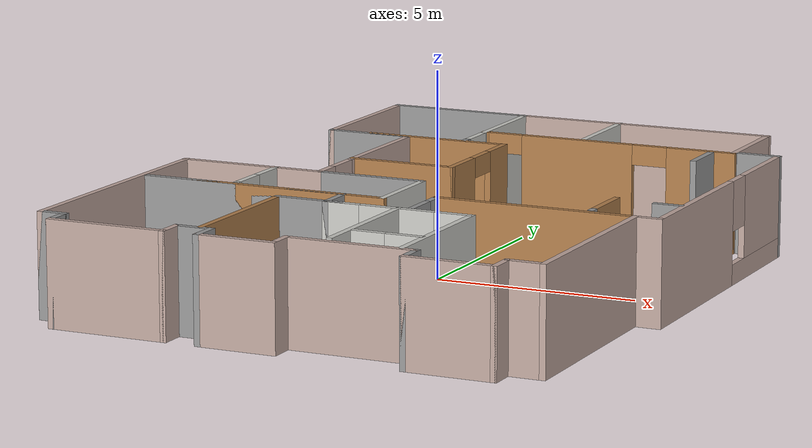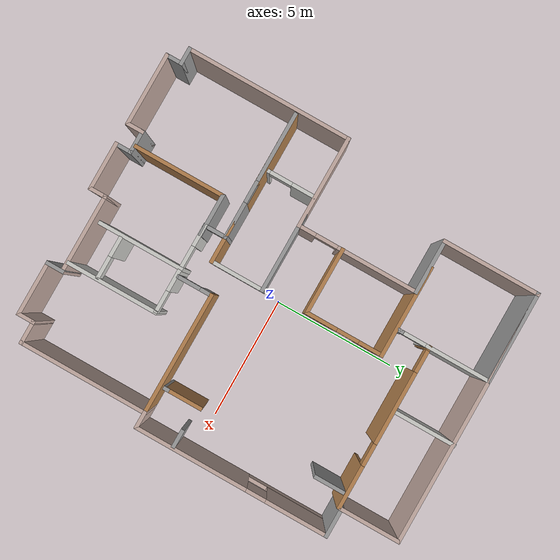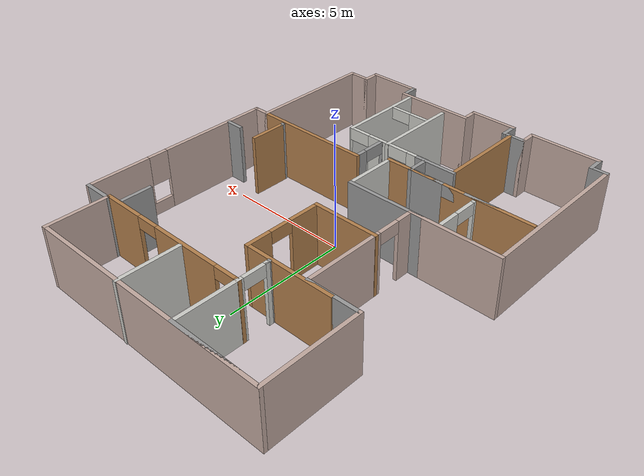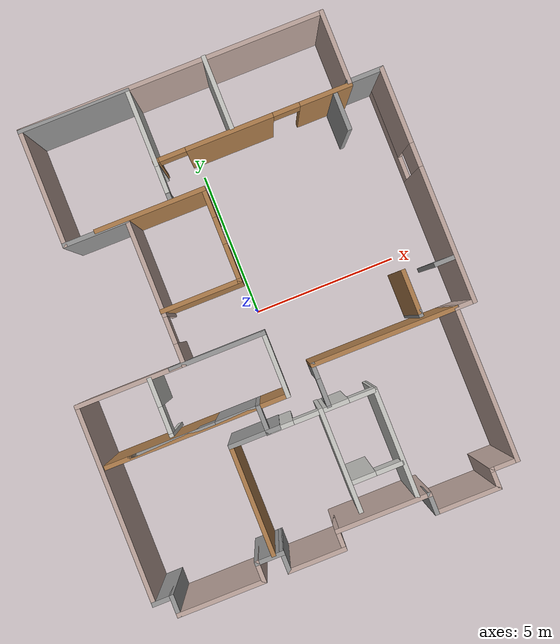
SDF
<?xml version='1.0'?>
<sdf version='1.6'>
  <model name='wall_v1'>
    <pose frame=''>0.046477 0.046613 0 0 -0 0</pose>
    <link name='Wall_1'>
      <collision name='Wall_1_Collision'>
        <geometry>
          <box>
            <size>4 0.15 2.5</size>
          </box>
        </geometry>
        <pose frame=''>0 0 1.25 0 -0 0</pose>
      </collision>
      <visual name='Wall_1_Visual'>
        <pose frame=''>0 0 1.25 0 -0 0</pose>
        <geometry>
          <box>
            <size>4 0.15 2.5</size>
          </box>
        </geometry>
        <material>
          <script>
            <uri>file://media/materials/scripts/gazebo.material</uri>
            <name>Gazebo/Grey</name>
          </script>
          <ambient>0.760784 0.662745 0.627451 1</ambient>
        </material>
        <meta>
          <layer>0</layer>
        </meta>
      </visual>
      <pose frame=''>-4.9 6.0117 0 0 0 -1.5708</pose>
    </link>
    <link name='Wall_10'>
      <collision name='Wall_10_Collision'>
        <geometry>
          <box>
            <size>1 0.15 2.5</size>
          </box>
        </geometry>
        <pose frame=''>0 0 1.25 0 -0 0</pose>
      </collision>
      <visual name='Wall_10_Visual'>
        <pose frame=''>0 0 1.25 0 -0 0</pose>
        <geometry>
          <box>
            <size>1 0.15 2.5</size>
          </box>
        </geometry>
        <material>
          <script>
            <uri>file://media/materials/scripts/gazebo.material</uri>
            <name>Gazebo/Grey</name>
          </script>
          <ambient>1 1 1 1</ambient>
        </material>
        <meta>
          <layer>0</layer>
        </meta>
      </visual>
      <pose frame=''>-2.525 -7.3633 0 0 -0 0</pose>
    </link>
    <link name='Wall_11'>
      <collision name='Wall_11_Collision'>
        <geometry>
          <box>
            <size>0.75 0.15 2.5</size>
          </box>
        </geometry>
        <pose frame=''>0 0 1.25 0 -0 0</pose>
      </collision>
      <visual name='Wall_11_Visual'>
        <pose frame=''>0 0 1.25 0 -0 0</pose>
        <geometry>
          <box>
            <size>0.75 0.15 2.5</size>
          </box>
        </geometry>
        <material>
          <script>
            <uri>file://media/materials/scripts/gazebo.material</uri>
            <name>Gazebo/Grey</name>
          </script>
          <ambient>1 1 1 1</ambient>
        </material>
        <meta>
          <layer>0</layer>
        </meta>
      </visual>
      <pose frame=''>-2.1 -7.6633 0 0 0 -1.5708</pose>
    </link>
    <link name='Wall_12'>
      <collision name='Wall_12_Collision'>
        <geometry>
          <box>
            <size>2 0.15 2.5</size>
          </box>
        </geometry>
        <pose frame=''>0 0 1.25 0 -0 0</pose>
      </collision>
      <visual name='Wall_12_Visual'>
        <pose frame=''>0 0 1.25 0 -0 0</pose>
        <geometry>
          <box>
            <size>2 0.15 2.5</size>
          </box>
        </geometry>
        <material>
          <script>
            <uri>file://media/materials/scripts/gazebo.material</uri>
            <name>Gazebo/Grey</name>
          </script>
          <ambient>0.760784 0.662745 0.627451 1</ambient>
        </material>
        <meta>
          <layer>0</layer>
        </meta>
      </visual>
      <pose frame=''>-1.175 -7.9633 0 0 -0 0</pose>
    </link>
    <link name='Wall_13'>
      <collision name='Wall_13_Collision'>
        <geometry>
          <box>
            <size>0.75 0.15 2.5</size>
          </box>
        </geometry>
        <pose frame=''>0 0 1.25 0 -0 0</pose>
      </collision>
      <visual name='Wall_13_Visual'>
        <pose frame=''>0 0 1.25 0 -0 0</pose>
        <geometry>
          <box>
            <size>0.75 0.15 2.5</size>
          </box>
        </geometry>
        <material>
          <script>
            <uri>file://media/materials/scripts/gazebo.material</uri>
            <name>Gazebo/Grey</name>
          </script>
          <ambient>0.760784 0.662745 0.627451 1</ambient>
        </material>
        <meta>
          <layer>0</layer>
        </meta>
      </visual>
      <pose frame=''>-0.25 -7.6633 0 0 -0 1.5708</pose>
    </link>
    <link name='Wall_14'>
      <collision name='Wall_14_Collision'>
        <geometry>
          <box>
            <size>3.25 0.15 2.5</size>
          </box>
        </geometry>
        <pose frame=''>0 0 1.25 0 -0 0</pose>
      </collision>
      <visual name='Wall_14_Visual'>
        <pose frame=''>0 0 1.25 0 -0 0</pose>
        <geometry>
          <box>
            <size>3.25 0.15 2.5</size>
          </box>
        </geometry>
        <material>
          <script>
            <uri>file://media/materials/scripts/gazebo.material</uri>
            <name>Gazebo/Grey</name>
          </script>
          <ambient>0.760784 0.662745 0.627451 1</ambient>
        </material>
        <meta>
          <layer>0</layer>
        </meta>
      </visual>
      <pose frame=''>1.3 -7.3633 0 0 -0 0</pose>
    </link>
    <link name='Wall_15'>
      <collision name='Wall_15_Collision'>
        <geometry>
          <box>
            <size>0.75 0.15 2.5</size>
          </box>
        </geometry>
        <pose frame=''>0 0 1.25 0 -0 0</pose>
      </collision>
      <visual name='Wall_15_Visual'>
        <pose frame=''>0 0 1.25 0 -0 0</pose>
        <geometry>
          <box>
            <size>0.75 0.15 2.5</size>
          </box>
        </geometry>
        <material>
          <script>
            <uri>file://media/materials/scripts/gazebo.material</uri>
            <name>Gazebo/Grey</name>
          </script>
          <ambient>1 1 1 1</ambient>
        </material>
        <meta>
          <layer>0</layer>
        </meta>
      </visual>
      <pose frame=''>2.85 -7.6633 0 0 0 -1.5708</pose>
    </link>
    <link name='Wall_16'>
      <collision name='Wall_16_Collision'>
        <geometry>
          <box>
            <size>2.25 0.15 2.5</size>
          </box>
        </geometry>
        <pose frame=''>0 0 1.25 0 -0 0</pose>
      </collision>
      <visual name='Wall_16_Visual'>
        <pose frame=''>0 0 1.25 0 -0 0</pose>
        <geometry>
          <box>
            <size>2.25 0.15 2.5</size>
          </box>
        </geometry>
        <material>
          <script>
            <uri>file://media/materials/scripts/gazebo.material</uri>
            <name>Gazebo/Grey</name>
          </script>
          <ambient>0.760784 0.662745 0.627451 1</ambient>
        </material>
        <meta>
          <layer>0</layer>
        </meta>
      </visual>
      <pose frame=''>3.9 -7.9633 0 0 -0 0</pose>
    </link>
    <link name='Wall_17'>
      <collision name='Wall_17_Collision'>
        <geometry>
          <box>
            <size>0.75 0.15 2.5</size>
          </box>
        </geometry>
        <pose frame=''>0 0 1.25 0 -0 0</pose>
      </collision>
      <visual name='Wall_17_Visual'>
        <pose frame=''>0 0 1.25 0 -0 0</pose>
        <geometry>
          <box>
            <size>0.75 0.15 2.5</size>
          </box>
        </geometry>
        <material>
          <script>
            <uri>file://media/materials/scripts/gazebo.material</uri>
            <name>Gazebo/Grey</name>
          </script>
          <ambient>0.760784 0.662745 0.627451 1</ambient>
        </material>
        <meta>
          <layer>0</layer>
        </meta>
      </visual>
      <pose frame=''>4.95 -7.6633 0 0 -0 1.5708</pose>
    </link>
    <link name='Wall_18'>
      <collision name='Wall_18_Collision'>
        <geometry>
          <box>
            <size>1 0.15 2.5</size>
          </box>
        </geometry>
        <pose frame=''>0 0 1.25 0 -0 0</pose>
      </collision>
      <visual name='Wall_18_Visual'>
        <pose frame=''>0 0 1.25 0 -0 0</pose>
        <geometry>
          <box>
            <size>1 0.15 2.5</size>
          </box>
        </geometry>
        <material>
          <script>
            <uri>file://media/materials/scripts/gazebo.material</uri>
            <name>Gazebo/Grey</name>
          </script>
          <ambient>0.760784 0.662745 0.627451 1</ambient>
        </material>
        <meta>
          <layer>0</layer>
        </meta>
      </visual>
      <pose frame=''>5.375 -7.3633 0 0 -0 0</pose>
    </link>
    <link name='Wall_19'>
      <collision name='Wall_19_Collision'>
        <geometry>
          <box>
            <size>5.25 0.15 2.5</size>
          </box>
        </geometry>
        <pose frame=''>0 0 1.25 0 -0 0</pose>
      </collision>
      <visual name='Wall_19_Visual'>
        <pose frame=''>0 0 1.25 0 -0 0</pose>
        <geometry>
          <box>
            <size>5.25 0.15 2.5</size>
          </box>
        </geometry>
        <material>
          <script>
            <uri>file://media/materials/scripts/gazebo.material</uri>
            <name>Gazebo/Grey</name>
          </script>
          <ambient>0.760784 0.662745 0.627451 1</ambient>
        </material>
        <meta>
          <layer>0</layer>
        </meta>
      </visual>
      <pose frame=''>5.8 -4.8133 0 0 -0 1.5708</pose>
    </link>
    <link name='Wall_2'>
      <collision name='Wall_2_Collision'>
        <geometry>
          <box>
            <size>2.25 0.15 2.5</size>
          </box>
        </geometry>
        <pose frame=''>0 0 1.25 0 -0 0</pose>
      </collision>
      <visual name='Wall_2_Visual'>
        <pose frame=''>0 0 1.25 0 -0 0</pose>
        <geometry>
          <box>
            <size>2.25 0.15 2.5</size>
          </box>
        </geometry>
        <material>
          <script>
            <uri>file://media/materials/scripts/gazebo.material</uri>
            <name>Gazebo/Grey</name>
          </script>
          <ambient>1 1 1 1</ambient>
        </material>
        <meta>
          <layer>0</layer>
        </meta>
      </visual>
      <pose frame=''>-3.85 4.0867 0 0 -0 0</pose>
    </link>
    <link name='Wall_20'>
      <collision name='Wall_20_Collision'>
        <geometry>
          <box>
            <size>0.75 0.15 2.5</size>
          </box>
        </geometry>
        <pose frame=''>0 0 1.25 0 -0 0</pose>
      </collision>
      <visual name='Wall_20_Visual'>
        <pose frame=''>0 0 1.25 0 -0 0</pose>
        <geometry>
          <box>
            <size>0.75 0.15 2.5</size>
          </box>
        </geometry>
        <material>
          <script>
            <uri>file://media/materials/scripts/gazebo.material</uri>
            <name>Gazebo/Grey</name>
          </script>
          <ambient>0.760784 0.662745 0.627451 1</ambient>
        </material>
        <meta>
          <layer>0</layer>
        </meta>
      </visual>
      <pose frame=''>6.1 -2.2633 0 0 -0 0</pose>
    </link>
    <link name='Wall_21'>
      <pose frame=''>6.4 1.6617 0 0 -0 1.5708</pose>
      <visual name='Wall_21_Visual_0'>
        <pose frame=''>-1.69592 0 1.25 0 -0 0</pose>
        <geometry>
          <box>
            <size>4.60816 0.15 2.5</size>
          </box>
        </geometry>
        <material>
          <script>
            <uri>file://media/materials/scripts/gazebo.material</uri>
            <name>Gazebo/Grey</name>
          </script>
          <ambient>0.760784 0.662745 0.627451 1</ambient>
        </material>
        <meta>
          <layer>0</layer>
        </meta>
      </visual>
      <collision name='Wall_21_Collision_0'>
        <geometry>
          <box>
            <size>4.60816 0.15 2.5</size>
          </box>
        </geometry>
        <pose frame=''>-1.69592 0 1.25 0 -0 0</pose>
      </collision>
      <visual name='Wall_21_Visual_1'>
        <pose frame=''>2.30408 0 0.25 0 -0 0</pose>
        <geometry>
          <box>
            <size>3.39184 0.15 0.5</size>
          </box>
        </geometry>
        <material>
          <script>
            <uri>file://media/materials/scripts/gazebo.material</uri>
            <name>Gazebo/Grey</name>
          </script>
          <ambient>0.760784 0.662745 0.627451 1</ambient>
        </material>
        <meta>
          <layer>0</layer>
        </meta>
      </visual>
      <collision name='Wall_21_Collision_1'>
        <geometry>
          <box>
            <size>3.39184 0.15 0.5</size>
          </box>
        </geometry>
        <pose frame=''>2.30408 0 0.25 0 -0 0</pose>
      </collision>
      <visual name='Wall_21_Visual_2'>
        <pose frame=''>2.70408 0 1.5 0 -0 0</pose>
        <geometry>
          <box>
            <size>2.59184 0.15 2</size>
          </box>
        </geometry>
        <material>
          <script>
            <uri>file://media/materials/scripts/gazebo.material</uri>
            <name>Gazebo/Grey</name>
          </script>
          <ambient>0.760784 0.662745 0.627451 1</ambient>
        </material>
        <meta>
          <layer>0</layer>
        </meta>
      </visual>
      <collision name='Wall_21_Collision_2'>
        <geometry>
          <box>
            <size>2.59184 0.15 2</size>
          </box>
        </geometry>
        <pose frame=''>2.70408 0 1.5 0 -0 0</pose>
      </collision>
      <visual name='Wall_21_Visual_3'>
        <pose frame=''>1.00816 0 1.9 0 -0 0</pose>
        <geometry>
          <box>
            <size>0.8 0.15 1.2</size>
          </box>
        </geometry>
        <material>
          <script>
            <uri>file://media/materials/scripts/gazebo.material</uri>
            <name>Gazebo/Grey</name>
          </script>
          <ambient>0.760784 0.662745 0.627451 1</ambient>
        </material>
        <meta>
          <layer>0</layer>
        </meta>
      </visual>
      <collision name='Wall_21_Collision_3'>
        <geometry>
          <box>
            <size>0.8 0.15 1.2</size>
          </box>
        </geometry>
        <pose frame=''>1.00816 0 1.9 0 -0 0</pose>
      </collision>
    </link>
    <link name='Wall_22'>
      <collision name='Wall_22_Collision'>
        <geometry>
          <box>
            <size>1.25 0.15 2.5</size>
          </box>
        </geometry>
        <pose frame=''>0 0 1.25 0 -0 0</pose>
      </collision>
      <visual name='Wall_22_Visual'>
        <pose frame=''>0 0 1.25 0 -0 0</pose>
        <geometry>
          <box>
            <size>1.25 0.15 2.5</size>
          </box>
        </geometry>
        <material>
          <script>
            <uri>file://media/materials/scripts/gazebo.material</uri>
            <name>Gazebo/Grey</name>
          </script>
          <ambient>1 1 1 1</ambient>
        </material>
        <meta>
          <layer>0</layer>
        </meta>
      </visual>
      <pose frame=''>5.85 5.5867 0 0 -0 3.14159</pose>
    </link>
    <link name='Wall_23'>
      <collision name='Wall_23_Collision'>
        <geometry>
          <box>
            <size>2.5 0.15 2.5</size>
          </box>
        </geometry>
        <pose frame=''>0 0 1.25 0 -0 0</pose>
      </collision>
      <visual name='Wall_23_Visual'>
        <pose frame=''>0 0 1.25 0 -0 0</pose>
        <geometry>
          <box>
            <size>2.5 0.15 2.5</size>
          </box>
        </geometry>
        <material>
          <script>
            <uri>file://media/materials/scripts/gazebo.material</uri>
            <name>Gazebo/Grey</name>
          </script>
          <ambient>0.760784 0.662745 0.627451 1</ambient>
        </material>
        <meta>
          <layer>0</layer>
        </meta>
      </visual>
      <pose frame=''>5.3 6.7617 0 0 -0 1.5708</pose>
    </link>
    <link name='Wall_24'>
      <collision name='Wall_24_Collision'>
        <geometry>
          <box>
            <size>10.35 0.15 2.5</size>
          </box>
        </geometry>
        <pose frame=''>0 0 1.25 0 -0 0</pose>
      </collision>
      <visual name='Wall_24_Visual'>
        <pose frame=''>0 0 1.25 0 -0 0</pose>
        <geometry>
          <box>
            <size>10.35 0.15 2.5</size>
          </box>
        </geometry>
        <material>
          <script>
            <uri>file://media/materials/scripts/gazebo.material</uri>
            <name>Gazebo/Grey</name>
          </script>
          <ambient>0.760784 0.662745 0.627451 1</ambient>
        </material>
        <meta>
          <layer>0</layer>
        </meta>
      </visual>
      <pose frame=''>0.2 7.9367 0 0 -0 3.14159</pose>
    </link>
    <link name='Wall_25'>
      <collision name='Wall_25_Collision'>
        <geometry>
          <box>
            <size>3.75 0.15 2.5</size>
          </box>
        </geometry>
        <pose frame=''>0 0 1.25 0 -0 0</pose>
      </collision>
      <visual name='Wall_25_Visual'>
        <pose frame=''>0 0 1.25 0 -0 0</pose>
        <geometry>
          <box>
            <size>3.75 0.15 2.5</size>
          </box>
        </geometry>
        <material>
          <script>
            <uri>file://media/materials/scripts/gazebo.material</uri>
            <name>Gazebo/Grey</name>
          </script>
          <ambient>1 1 1 1</ambient>
        </material>
        <meta>
          <layer>0</layer>
        </meta>
      </visual>
      <pose frame=''>-3.1 7.9367 0 0 -0 0</pose>
    </link>
    <link name='Wall_26'>
      <pose frame=''>-1.3 6.1367 0 0 0 -1.5708</pose>
      <visual name='Wall_26_Visual_0'>
        <pose frame=''>-0.532989 0 1.25 0 -0 0</pose>
        <geometry>
          <box>
            <size>2.68402 0.15 2.5</size>
          </box>
        </geometry>
        <material>
          <script>
            <uri>file://media/materials/scripts/gazebo.material</uri>
            <name>Gazebo/CeilingTiled</name>
          </script>
          <ambient>1 1 1 1</ambient>
        </material>
        <meta>
          <layer>0</layer>
        </meta>
      </visual>
      <collision name='Wall_26_Collision_0'>
        <geometry>
          <box>
            <size>2.68402 0.15 2.5</size>
          </box>
        </geometry>
        <pose frame=''>-0.532989 0 1.25 0 -0 0</pose>
      </collision>
      <visual name='Wall_26_Visual_1'>
        <pose frame=''>1.79201 0 1.25 0 -0 0</pose>
        <geometry>
          <box>
            <size>0.165977 0.15 2.5</size>
          </box>
        </geometry>
        <material>
          <script>
            <uri>file://media/materials/scripts/gazebo.material</uri>
            <name>Gazebo/CeilingTiled</name>
          </script>
          <ambient>1 1 1 1</ambient>
        </material>
        <meta>
          <layer>0</layer>
        </meta>
      </visual>
      <collision name='Wall_26_Collision_1'>
        <geometry>
          <box>
            <size>0.165977 0.15 2.5</size>
          </box>
        </geometry>
        <pose frame=''>1.79201 0 1.25 0 -0 0</pose>
      </collision>
      <visual name='Wall_26_Visual_2'>
        <pose frame=''>1.25902 0 2.25 0 -0 0</pose>
        <geometry>
          <box>
            <size>0.9 0.15 0.5</size>
          </box>
        </geometry>
        <material>
          <script>
            <uri>file://media/materials/scripts/gazebo.material</uri>
            <name>Gazebo/CeilingTiled</name>
          </script>
          <ambient>1 1 1 1</ambient>
        </material>
        <meta>
          <layer>0</layer>
        </meta>
      </visual>
      <collision name='Wall_26_Collision_2'>
        <geometry>
          <box>
            <size>0.9 0.15 0.5</size>
          </box>
        </geometry>
        <pose frame=''>1.25902 0 2.25 0 -0 0</pose>
      </collision>
    </link>
    <link name='Wall_27'>
      <collision name='Wall_27_Collision'>
        <geometry>
          <box>
            <size>0.25 0.15 2.5</size>
          </box>
        </geometry>
        <pose frame=''>0 0 1.25 0 -0 0</pose>
      </collision>
      <visual name='Wall_27_Visual'>
        <pose frame=''>0 0 1.25 0 -0 0</pose>
        <geometry>
          <box>
            <size>0.25 0.15 2.5</size>
          </box>
        </geometry>
        <material>
          <script>
            <uri>file://media/materials/scripts/gazebo.material</uri>
            <name>Gazebo/Grey</name>
          </script>
          <ambient>1 1 1 1</ambient>
        </material>
        <meta>
          <layer>0</layer>
        </meta>
      </visual>
      <pose frame=''>-1.3 4.2867 0 0 0 -1.5708</pose>
    </link>
    <link name='Wall_3'>
      <pose frame=''>-2.8 1.6617 0 0 0 -1.5708</pose>
      <visual name='Wall_3_Visual_0'>
        <pose frame=''>-0.835272 0 1.25 0 -0 0</pose>
        <geometry>
          <box>
            <size>3.32946 0.15 2.5</size>
          </box>
        </geometry>
        <material>
          <script>
            <uri>file://media/materials/scripts/gazebo.material</uri>
            <name>Gazebo/Grey</name>
          </script>
          <ambient>0.760784 0.662745 0.627451 1</ambient>
        </material>
        <meta>
          <layer>0</layer>
        </meta>
      </visual>
      <collision name='Wall_3_Collision_0'>
        <geometry>
          <box>
            <size>3.32946 0.15 2.5</size>
          </box>
        </geometry>
        <pose frame=''>-0.835272 0 1.25 0 -0 0</pose>
      </collision>
      <visual name='Wall_3_Visual_1'>
        <pose frame=''>2.11473 0 1.25 0 -0 0</pose>
        <geometry>
          <box>
            <size>0.770544 0.15 2.5</size>
          </box>
        </geometry>
        <material>
          <script>
            <uri>file://media/materials/scripts/gazebo.material</uri>
            <name>Gazebo/Grey</name>
          </script>
          <ambient>0.760784 0.662745 0.627451 1</ambient>
        </material>
        <meta>
          <layer>0</layer>
        </meta>
      </visual>
      <collision name='Wall_3_Collision_1'>
        <geometry>
          <box>
            <size>0.770544 0.15 2.5</size>
          </box>
        </geometry>
        <pose frame=''>2.11473 0 1.25 0 -0 0</pose>
      </collision>
      <visual name='Wall_3_Visual_2'>
        <pose frame=''>1.27946 0 2.25 0 -0 0</pose>
        <geometry>
          <box>
            <size>0.9 0.15 0.5</size>
          </box>
        </geometry>
        <material>
          <script>
            <uri>file://media/materials/scripts/gazebo.material</uri>
            <name>Gazebo/Grey</name>
          </script>
          <ambient>0.760784 0.662745 0.627451 1</ambient>
        </material>
        <meta>
          <layer>0</layer>
        </meta>
      </visual>
      <collision name='Wall_3_Collision_2'>
        <geometry>
          <box>
            <size>0.9 0.15 0.5</size>
          </box>
        </geometry>
        <pose frame=''>1.27946 0 2.25 0 -0 0</pose>
      </collision>
    </link>
    <link name='Wall_30'>
      <collision name='Wall_30_Collision'>
        <geometry>
          <box>
            <size>3.75 0.15 2.5</size>
          </box>
        </geometry>
        <pose frame=''>0 0 1.25 0 -0 0</pose>
      </collision>
      <visual name='Wall_30_Visual'>
        <pose frame=''>0 0 1.25 0 -0 0</pose>
        <geometry>
          <box>
            <size>3.75 0.15 2.5</size>
          </box>
        </geometry>
        <material>
          <script>
            <uri>file://media/materials/scripts/gazebo.material</uri>
            <name>Gazebo/Wood</name>
          </script>
          <ambient>1 1 1 1</ambient>
        </material>
        <meta>
          <layer>0</layer>
        </meta>
      </visual>
      <pose frame=''>-2.00939 4.13287 0 0 -0 0</pose>
    </link>
    <link name='Wall_31'>
      <pose frame=''>-0.209392 2.58287 0 0 0 -1.5708</pose>
      <visual name='Wall_31_Visual_0'>
        <pose frame=''>-1.1076 0 1.25 0 -0 0</pose>
        <geometry>
          <box>
            <size>1.03481 0.15 2.5</size>
          </box>
        </geometry>
        <material>
          <script>
            <uri>file://media/materials/scripts/gazebo.material</uri>
            <name>Gazebo/Wood</name>
          </script>
          <ambient>1 1 1 1</ambient>
        </material>
        <meta>
          <layer>0</layer>
        </meta>
      </visual>
      <collision name='Wall_31_Collision_0'>
        <geometry>
          <box>
            <size>1.03481 0.15 2.5</size>
          </box>
        </geometry>
        <pose frame=''>-1.1076 0 1.25 0 -0 0</pose>
      </collision>
      <visual name='Wall_31_Visual_1'>
        <pose frame=''>0.967405 0 1.25 0 -0 0</pose>
        <geometry>
          <box>
            <size>1.31519 0.15 2.5</size>
          </box>
        </geometry>
        <material>
          <script>
            <uri>file://media/materials/scripts/gazebo.material</uri>
            <name>Gazebo/Wood</name>
          </script>
          <ambient>1 1 1 1</ambient>
        </material>
        <meta>
          <layer>0</layer>
        </meta>
      </visual>
      <collision name='Wall_31_Collision_1'>
        <geometry>
          <box>
            <size>1.31519 0.15 2.5</size>
          </box>
        </geometry>
        <pose frame=''>0.967405 0 1.25 0 -0 0</pose>
      </collision>
      <visual name='Wall_31_Visual_2'>
        <pose frame=''>-0.140189 0 2.25 0 -0 0</pose>
        <geometry>
          <box>
            <size>0.9 0.15 0.5</size>
          </box>
        </geometry>
        <material>
          <script>
            <uri>file://media/materials/scripts/gazebo.material</uri>
            <name>Gazebo/Wood</name>
          </script>
          <ambient>1 1 1 1</ambient>
        </material>
        <meta>
          <layer>0</layer>
        </meta>
      </visual>
      <collision name='Wall_31_Collision_2'>
        <geometry>
          <box>
            <size>0.9 0.15 0.5</size>
          </box>
        </geometry>
        <pose frame=''>-0.140189 0 2.25 0 -0 0</pose>
      </collision>
    </link>
    <link name='Wall_32'>
      <collision name='Wall_32_Collision'>
        <geometry>
          <box>
            <size>2.75 0.15 2.5</size>
          </box>
        </geometry>
        <pose frame=''>0 0 1.25 0 -0 0</pose>
      </collision>
      <visual name='Wall_32_Visual'>
        <pose frame=''>0 0 1.25 0 -0 0</pose>
        <geometry>
          <box>
            <size>2.75 0.15 2.5</size>
          </box>
        </geometry>
        <material>
          <script>
            <uri>file://media/materials/scripts/gazebo.material</uri>
            <name>Gazebo/Wood</name>
          </script>
          <ambient>1 1 1 1</ambient>
        </material>
        <meta>
          <layer>0</layer>
        </meta>
      </visual>
      <pose frame=''>-1.50939 1.03287 0 0 -0 3.14159</pose>
    </link>
    <link name='Wall_34'>
      <collision name='Wall_34_Collision'>
        <geometry>
          <box>
            <size>3.25 0.15 2.5</size>
          </box>
        </geometry>
        <pose frame=''>0 0 1.25 0 -0 0</pose>
      </collision>
      <visual name='Wall_34_Visual'>
        <pose frame=''>0 0 1.25 0 -0 0</pose>
        <geometry>
          <box>
            <size>3.25 0.15 2.5</size>
          </box>
        </geometry>
        <material>
          <script>
            <uri>file://media/materials/scripts/gazebo.material</uri>
            <name>Gazebo/Grey</name>
          </script>
          <ambient>1 1 1 1</ambient>
        </material>
        <meta>
          <layer>0</layer>
        </meta>
      </visual>
      <pose frame=''>-1.67419 -0.761565 0 0 -0 0</pose>
    </link>
    <link name='Wall_35'>
      <collision name='Wall_35_Collision'>
        <geometry>
          <box>
            <size>2.25 0.15 2.5</size>
          </box>
        </geometry>
        <pose frame=''>0 0 1.25 0 -0 0</pose>
      </collision>
      <visual name='Wall_35_Visual'>
        <pose frame=''>0 0 1.25 0 -0 0</pose>
        <geometry>
          <box>
            <size>2.25 0.15 2.5</size>
          </box>
        </geometry>
        <material>
          <script>
            <uri>file://media/materials/scripts/gazebo.material</uri>
            <name>Gazebo/CeilingTiled</name>
          </script>
          <ambient>1 1 1 1</ambient>
        </material>
        <meta>
          <layer>0</layer>
        </meta>
      </visual>
      <pose frame=''>-0.124188 -1.81157 0 0 0 -1.5708</pose>
    </link>
    <link name='Wall_36'>
      <collision name='Wall_36_Collision'>
        <geometry>
          <box>
            <size>6.25 0.15 2.5</size>
          </box>
        </geometry>
        <pose frame=''>0 0 1.25 0 -0 0</pose>
      </collision>
      <visual name='Wall_36_Visual'>
        <pose frame=''>0 0 1.25 0 -0 0</pose>
        <geometry>
          <box>
            <size>6.25 0.15 2.5</size>
          </box>
        </geometry>
        <material>
          <script>
            <uri>file://media/materials/scripts/gazebo.material</uri>
            <name>Gazebo/Wood</name>
          </script>
          <ambient>1 1 1 1</ambient>
        </material>
        <meta>
          <layer>0</layer>
        </meta>
      </visual>
      <pose frame=''>-3.17419 -2.86157 0 0 -0 3.14159</pose>
    </link>
    <link name='Wall_37'>
      <pose frame=''>-3.67419 -2.86157 0 0 -0 0</pose>
      <visual name='Wall_37_Visual_0'>
        <pose frame=''>-1.2061 0 1.25 0 -0 0</pose>
        <geometry>
          <box>
            <size>2.8378 0.15 2.5</size>
          </box>
        </geometry>
        <material>
          <script>
            <uri>file://media/materials/scripts/gazebo.material</uri>
            <name>Gazebo/Grey</name>
          </script>
          <ambient>1 1 1 1</ambient>
        </material>
        <meta>
          <layer>0</layer>
        </meta>
      </visual>
      <collision name='Wall_37_Collision_0'>
        <geometry>
          <box>
            <size>2.8378 0.15 2.5</size>
          </box>
        </geometry>
        <pose frame=''>-1.2061 0 1.25 0 -0 0</pose>
      </collision>
      <visual name='Wall_37_Visual_1'>
        <pose frame=''>1.8689 0 1.25 0 -0 0</pose>
        <geometry>
          <box>
            <size>1.5122 0.15 2.5</size>
          </box>
        </geometry>
        <material>
          <script>
            <uri>file://media/materials/scripts/gazebo.material</uri>
            <name>Gazebo/Grey</name>
          </script>
          <ambient>1 1 1 1</ambient>
        </material>
        <meta>
          <layer>0</layer>
        </meta>
      </visual>
      <collision name='Wall_37_Collision_1'>
        <geometry>
          <box>
            <size>1.5122 0.15 2.5</size>
          </box>
        </geometry>
        <pose frame=''>1.8689 0 1.25 0 -0 0</pose>
      </collision>
      <visual name='Wall_37_Visual_2'>
        <pose frame=''>0.662802 0 2.25 0 -0 0</pose>
        <geometry>
          <box>
            <size>0.9 0.15 0.5</size>
          </box>
        </geometry>
        <material>
          <script>
            <uri>file://media/materials/scripts/gazebo.material</uri>
            <name>Gazebo/Grey</name>
          </script>
          <ambient>1 1 1 1</ambient>
        </material>
        <meta>
          <layer>0</layer>
        </meta>
      </visual>
      <collision name='Wall_37_Collision_2'>
        <geometry>
          <box>
            <size>0.9 0.15 0.5</size>
          </box>
        </geometry>
        <pose frame=''>0.662802 0 2.25 0 -0 0</pose>
      </collision>
    </link>
    <link name='Wall_38'>
      <pose frame=''>-1.12419 -3.28656 0 0 0 -1.5708</pose>
      <visual name='Wall_38_Visual_0'>
        <pose frame=''>-0.487291 0 1.25 0 -0 0</pose>
        <geometry>
          <box>
            <size>0.025419 0.15 2.5</size>
          </box>
        </geometry>
        <material>
          <script>
            <uri>file://media/materials/scripts/gazebo.material</uri>
            <name>Gazebo/Grey</name>
          </script>
          <ambient>1 1 1 1</ambient>
        </material>
        <meta>
          <layer>0</layer>
        </meta>
      </visual>
      <collision name='Wall_38_Collision_0'>
        <geometry>
          <box>
            <size>0.025419 0.15 2.5</size>
          </box>
        </geometry>
        <pose frame=''>-0.487291 0 1.25 0 -0 0</pose>
      </collision>
      <visual name='Wall_38_Visual_1'>
        <pose frame=''>0.462709 0 1.25 0 -0 0</pose>
        <geometry>
          <box>
            <size>0.074581 0.15 2.5</size>
          </box>
        </geometry>
        <material>
          <script>
            <uri>file://media/materials/scripts/gazebo.material</uri>
            <name>Gazebo/Grey</name>
          </script>
          <ambient>1 1 1 1</ambient>
        </material>
        <meta>
          <layer>0</layer>
        </meta>
      </visual>
      <collision name='Wall_38_Collision_1'>
        <geometry>
          <box>
            <size>0.074581 0.15 2.5</size>
          </box>
        </geometry>
        <pose frame=''>0.462709 0 1.25 0 -0 0</pose>
      </collision>
      <visual name='Wall_38_Visual_2'>
        <pose frame=''>-0.024581 0 2.25 0 -0 0</pose>
        <geometry>
          <box>
            <size>0.9 0.15 0.5</size>
          </box>
        </geometry>
        <material>
          <script>
            <uri>file://media/materials/scripts/gazebo.material</uri>
            <name>Gazebo/Grey</name>
          </script>
          <ambient>1 1 1 1</ambient>
        </material>
        <meta>
          <layer>0</layer>
        </meta>
      </visual>
      <collision name='Wall_38_Collision_2'>
        <geometry>
          <box>
            <size>0.9 0.15 0.5</size>
          </box>
        </geometry>
        <pose frame=''>-0.024581 0 2.25 0 -0 0</pose>
      </collision>
    </link>
    <link name='Wall_39'>
      <pose frame=''>0.675812 -3.71156 0 0 -0 0</pose>
      <visual name='Wall_39_Visual_0'>
        <pose frame=''>-1.41009 0 1.25 0 -0 0</pose>
        <geometry>
          <box>
            <size>0.929825 0.15 2.5</size>
          </box>
        </geometry>
        <material>
          <script>
            <uri>file://media/materials/scripts/gazebo.material</uri>
            <name>Gazebo/CeilingTiled</name>
          </script>
          <ambient>1 1 1 1</ambient>
        </material>
        <meta>
          <layer>0</layer>
        </meta>
      </visual>
      <collision name='Wall_39_Collision_0'>
        <geometry>
          <box>
            <size>0.929825 0.15 2.5</size>
          </box>
        </geometry>
        <pose frame=''>-1.41009 0 1.25 0 -0 0</pose>
      </collision>
      <visual name='Wall_39_Visual_1'>
        <pose frame=''>0.435832 0 1.25 0 -0 0</pose>
        <geometry>
          <box>
            <size>0.962014 0.15 2.5</size>
          </box>
        </geometry>
        <material>
          <script>
            <uri>file://media/materials/scripts/gazebo.material</uri>
            <name>Gazebo/CeilingTiled</name>
          </script>
          <ambient>1 1 1 1</ambient>
        </material>
        <meta>
          <layer>0</layer>
        </meta>
      </visual>
      <collision name='Wall_39_Collision_1'>
        <geometry>
          <box>
            <size>0.962014 0.15 2.5</size>
          </box>
        </geometry>
        <pose frame=''>0.435832 0 1.25 0 -0 0</pose>
      </collision>
      <visual name='Wall_39_Visual_2'>
        <pose frame=''>1.84592 0 1.25 0 -0 0</pose>
        <geometry>
          <box>
            <size>0.058161 0.15 2.5</size>
          </box>
        </geometry>
        <material>
          <script>
            <uri>file://media/materials/scripts/gazebo.material</uri>
            <name>Gazebo/CeilingTiled</name>
          </script>
          <ambient>1 1 1 1</ambient>
        </material>
        <meta>
          <layer>0</layer>
        </meta>
      </visual>
      <collision name='Wall_39_Collision_2'>
        <geometry>
          <box>
            <size>0.058161 0.15 2.5</size>
          </box>
        </geometry>
        <pose frame=''>1.84592 0 1.25 0 -0 0</pose>
      </collision>
      <visual name='Wall_39_Visual_3'>
        <pose frame=''>-0.495175 0 2.25 0 -0 0</pose>
        <geometry>
          <box>
            <size>0.9 0.15 0.5</size>
          </box>
        </geometry>
        <material>
          <script>
            <uri>file://media/materials/scripts/gazebo.material</uri>
            <name>Gazebo/CeilingTiled</name>
          </script>
          <ambient>1 1 1 1</ambient>
        </material>
        <meta>
          <layer>0</layer>
        </meta>
      </visual>
      <collision name='Wall_39_Collision_3'>
        <geometry>
          <box>
            <size>0.9 0.15 0.5</size>
          </box>
        </geometry>
        <pose frame=''>-0.495175 0 2.25 0 -0 0</pose>
      </collision>
      <visual name='Wall_39_Visual_4'>
        <pose frame=''>1.36684 0 2.25 0 -0 0</pose>
        <geometry>
          <box>
            <size>0.9 0.15 0.5</size>
          </box>
        </geometry>
        <material>
          <script>
            <uri>file://media/materials/scripts/gazebo.material</uri>
            <name>Gazebo/CeilingTiled</name>
          </script>
          <ambient>1 1 1 1</ambient>
        </material>
        <meta>
          <layer>0</layer>
        </meta>
      </visual>
      <collision name='Wall_39_Collision_4'>
        <geometry>
          <box>
            <size>0.9 0.15 0.5</size>
          </box>
        </geometry>
        <pose frame=''>1.36684 0 2.25 0 -0 0</pose>
      </collision>
    </link>
    <link name='Wall_4'>
      <collision name='Wall_4_Collision'>
        <geometry>
          <box>
            <size>3.75 0.15 2.5</size>
          </box>
        </geometry>
        <pose frame=''>0 0 1.25 0 -0 0</pose>
      </collision>
      <visual name='Wall_4_Visual'>
        <pose frame=''>0 0 1.25 0 -0 0</pose>
        <geometry>
          <box>
            <size>3.75 0.15 2.5</size>
          </box>
        </geometry>
        <material>
          <script>
            <uri>file://media/materials/scripts/gazebo.material</uri>
            <name>Gazebo/Grey</name>
          </script>
          <ambient>0.760784 0.662745 0.627451 1</ambient>
        </material>
        <meta>
          <layer>0</layer>
        </meta>
      </visual>
      <pose frame=''>-4.6 -0.7633 0 0 -0 3.14159</pose>
    </link>
    <link name='Wall_40'>
      <collision name='Wall_40_Collision'>
        <geometry>
          <box>
            <size>3.75 0.15 2.5</size>
          </box>
        </geometry>
        <pose frame=''>0 0 1.25 0 -0 0</pose>
      </collision>
      <visual name='Wall_40_Visual'>
        <pose frame=''>0 0 1.25 0 -0 0</pose>
        <geometry>
          <box>
            <size>3.75 0.15 2.5</size>
          </box>
        </geometry>
        <material>
          <script>
            <uri>file://media/materials/scripts/gazebo.material</uri>
            <name>Gazebo/CeilingTiled</name>
          </script>
          <ambient>1 1 1 1</ambient>
        </material>
        <meta>
          <layer>0</layer>
        </meta>
      </visual>
      <pose frame=''>2.47581 -5.51157 0 0 0 -1.5708</pose>
    </link>
    <link name='Wall_42'>
      <collision name='Wall_42_Collision'>
        <geometry>
          <box>
            <size>3.5 0.15 2.5</size>
          </box>
        </geometry>
        <pose frame=''>0 0 1.25 0 -0 0</pose>
      </collision>
      <visual name='Wall_42_Visual'>
        <pose frame=''>0 0 1.25 0 -0 0</pose>
        <geometry>
          <box>
            <size>3.5 0.15 2.5</size>
          </box>
        </geometry>
        <material>
          <script>
            <uri>file://media/materials/scripts/gazebo.material</uri>
            <name>Gazebo/CeilingTiled</name>
          </script>
          <ambient>1 1 1 1</ambient>
        </material>
        <meta>
          <layer>0</layer>
        </meta>
      </visual>
      <pose frame=''>0.659442 -5.36259 0 0 0 -1.5708</pose>
    </link>
    <link name='Wall_44'>
      <collision name='Wall_44_Collision'>
        <geometry>
          <box>
            <size>1.75 0.15 2.5</size>
          </box>
        </geometry>
        <pose frame=''>0 0 1.25 0 -0 0</pose>
      </collision>
      <visual name='Wall_44_Visual'>
        <pose frame=''>0 0 1.25 0 -0 0</pose>
        <geometry>
          <box>
            <size>1.75 0.15 2.5</size>
          </box>
        </geometry>
        <material>
          <script>
            <uri>file://media/materials/scripts/gazebo.material</uri>
            <name>Gazebo/Grey</name>
          </script>
          <ambient>1 1 1 1</ambient>
        </material>
        <meta>
          <layer>0</layer>
        </meta>
      </visual>
      <pose frame=''>-1.57697 -3.68759 0 0 -0 3.14159</pose>
    </link>
    <link name='Wall_45'>
      <collision name='Wall_45_Collision'>
        <geometry>
          <box>
            <size>3.75 0.15 2.5</size>
          </box>
        </geometry>
        <pose frame=''>0 0 1.25 0 -0 0</pose>
      </collision>
      <visual name='Wall_45_Visual'>
        <pose frame=''>0 0 1.25 0 -0 0</pose>
        <geometry>
          <box>
            <size>3.75 0.15 2.5</size>
          </box>
        </geometry>
        <material>
          <script>
            <uri>file://media/materials/scripts/gazebo.material</uri>
            <name>Gazebo/Wood</name>
          </script>
          <ambient>1 1 1 1</ambient>
        </material>
        <meta>
          <layer>0</layer>
        </meta>
      </visual>
      <pose frame=''>-2.37697 -5.48759 0 0 0 -1.5708</pose>
    </link>
    <link name='Wall_47'>
      <pose frame=''>-3.96899 -1.73977 0 0 0 -1.5708</pose>
      <visual name='Wall_47_Visual_0'>
        <pose frame=''>-0.509195 0 1.25 0 -0 0</pose>
        <geometry>
          <box>
            <size>0.98161 0.15 2.5</size>
          </box>
        </geometry>
        <material>
          <script>
            <uri>file://media/materials/scripts/gazebo.material</uri>
            <name>Gazebo/CeilingTiled</name>
          </script>
          <ambient>1 1 1 1</ambient>
        </material>
        <meta>
          <layer>0</layer>
        </meta>
      </visual>
      <collision name='Wall_47_Collision_0'>
        <geometry>
          <box>
            <size>0.98161 0.15 2.5</size>
          </box>
        </geometry>
        <pose frame=''>-0.509195 0 1.25 0 -0 0</pose>
      </collision>
      <visual name='Wall_47_Visual_1'>
        <pose frame=''>0.940805 0 1.25 0 -0 0</pose>
        <geometry>
          <box>
            <size>0.11839 0.15 2.5</size>
          </box>
        </geometry>
        <material>
          <script>
            <uri>file://media/materials/scripts/gazebo.material</uri>
            <name>Gazebo/CeilingTiled</name>
          </script>
          <ambient>1 1 1 1</ambient>
        </material>
        <meta>
          <layer>0</layer>
        </meta>
      </visual>
      <collision name='Wall_47_Collision_1'>
        <geometry>
          <box>
            <size>0.11839 0.15 2.5</size>
          </box>
        </geometry>
        <pose frame=''>0.940805 0 1.25 0 -0 0</pose>
      </collision>
      <visual name='Wall_47_Visual_2'>
        <pose frame=''>0.43161 0 2.25 0 -0 0</pose>
        <geometry>
          <box>
            <size>0.9 0.15 0.5</size>
          </box>
        </geometry>
        <material>
          <script>
            <uri>file://media/materials/scripts/gazebo.material</uri>
            <name>Gazebo/CeilingTiled</name>
          </script>
          <ambient>1 1 1 1</ambient>
        </material>
        <meta>
          <layer>0</layer>
        </meta>
      </visual>
      <collision name='Wall_47_Collision_2'>
        <geometry>
          <box>
            <size>0.9 0.15 0.5</size>
          </box>
        </geometry>
        <pose frame=''>0.43161 0 2.25 0 -0 0</pose>
      </collision>
    </link>
    <link name='Wall_49'>
      <pose frame=''>1.59244 -6.13481 0 0 -0 0</pose>
      <visual name='Wall_49_Visual_0'>
        <pose frame=''>-0.463996 0 1.25 0 -0 0</pose>
        <geometry>
          <box>
            <size>0.822009 0.15 2.5</size>
          </box>
        </geometry>
        <material>
          <script>
            <uri>file://media/materials/scripts/gazebo.material</uri>
            <name>Gazebo/CeilingTiled</name>
          </script>
          <ambient>1 1 1 1</ambient>
        </material>
        <meta>
          <layer>0</layer>
        </meta>
      </visual>
      <collision name='Wall_49_Collision_0'>
        <geometry>
          <box>
            <size>0.822009 0.15 2.5</size>
          </box>
        </geometry>
        <pose frame=''>-0.463996 0 1.25 0 -0 0</pose>
      </collision>
      <visual name='Wall_49_Visual_1'>
        <pose frame=''>0.861004 0 1.25 0 -0 0</pose>
        <geometry>
          <box>
            <size>0.027991 0.15 2.5</size>
          </box>
        </geometry>
        <material>
          <script>
            <uri>file://media/materials/scripts/gazebo.material</uri>
            <name>Gazebo/CeilingTiled</name>
          </script>
          <ambient>1 1 1 1</ambient>
        </material>
        <meta>
          <layer>0</layer>
        </meta>
      </visual>
      <collision name='Wall_49_Collision_1'>
        <geometry>
          <box>
            <size>0.027991 0.15 2.5</size>
          </box>
        </geometry>
        <pose frame=''>0.861004 0 1.25 0 -0 0</pose>
      </collision>
      <visual name='Wall_49_Visual_2'>
        <pose frame=''>0.397009 0 2.25 0 -0 0</pose>
        <geometry>
          <box>
            <size>0.9 0.15 0.5</size>
          </box>
        </geometry>
        <material>
          <script>
            <uri>file://media/materials/scripts/gazebo.material</uri>
            <name>Gazebo/CeilingTiled</name>
          </script>
          <ambient>1 1 1 1</ambient>
        </material>
        <meta>
          <layer>0</layer>
        </meta>
      </visual>
      <collision name='Wall_49_Collision_2'>
        <geometry>
          <box>
            <size>0.9 0.15 0.5</size>
          </box>
        </geometry>
        <pose frame=''>0.397009 0 2.25 0 -0 0</pose>
      </collision>
    </link>
    <link name='Wall_5'>
      <collision name='Wall_5_Collision'>
        <geometry>
          <box>
            <size>6.75 0.15 2.5</size>
          </box>
        </geometry>
        <pose frame=''>0 0 1.25 0 -0 0</pose>
      </collision>
      <visual name='Wall_5_Visual'>
        <pose frame=''>0 0 1.25 0 -0 0</pose>
        <geometry>
          <box>
            <size>6.75 0.15 2.5</size>
          </box>
        </geometry>
        <material>
          <script>
            <uri>file://media/materials/scripts/gazebo.material</uri>
            <name>Gazebo/Grey</name>
          </script>
          <ambient>0.760784 0.662745 0.627451 1</ambient>
        </material>
        <meta>
          <layer>0</layer>
        </meta>
      </visual>
      <pose frame=''>-6.4 -4.0633 0 0 0 -1.5708</pose>
    </link>
    <link name='Wall_51'>
      <pose frame=''>1.99103 5.48948 0 0 -0 0</pose>
      <visual name='Wall_51_Visual_0'>
        <pose frame=''>-3.2699 0 1.25 0 -0 0</pose>
        <geometry>
          <box>
            <size>0.210204 0.15 2.5</size>
          </box>
        </geometry>
        <material>
          <script>
            <uri>file://media/materials/scripts/gazebo.material</uri>
            <name>Gazebo/Wood</name>
          </script>
          <ambient>1 1 1 1</ambient>
        </material>
        <meta>
          <layer>0</layer>
        </meta>
      </visual>
      <collision name='Wall_51_Collision_0'>
        <geometry>
          <box>
            <size>0.210204 0.15 2.5</size>
          </box>
        </geometry>
        <pose frame=''>-3.2699 0 1.25 0 -0 0</pose>
      </collision>
      <visual name='Wall_51_Visual_1'>
        <pose frame=''>-0.786281 0 1.25 0 -0 0</pose>
        <geometry>
          <box>
            <size>2.95703 0.15 2.5</size>
          </box>
        </geometry>
        <material>
          <script>
            <uri>file://media/materials/scripts/gazebo.material</uri>
            <name>Gazebo/Wood</name>
          </script>
          <ambient>1 1 1 1</ambient>
        </material>
        <meta>
          <layer>0</layer>
        </meta>
      </visual>
      <collision name='Wall_51_Collision_1'>
        <geometry>
          <box>
            <size>2.95703 0.15 2.5</size>
          </box>
        </geometry>
        <pose frame=''>-0.786281 0 1.25 0 -0 0</pose>
      </collision>
      <visual name='Wall_51_Visual_2'>
        <pose frame=''>2.48362 0 1.25 0 -0 0</pose>
        <geometry>
          <box>
            <size>1.78277 0.15 2.5</size>
          </box>
        </geometry>
        <material>
          <script>
            <uri>file://media/materials/scripts/gazebo.material</uri>
            <name>Gazebo/Wood</name>
          </script>
          <ambient>1 1 1 1</ambient>
        </material>
        <meta>
          <layer>0</layer>
        </meta>
      </visual>
      <collision name='Wall_51_Collision_2'>
        <geometry>
          <box>
            <size>1.78277 0.15 2.5</size>
          </box>
        </geometry>
        <pose frame=''>2.48362 0 1.25 0 -0 0</pose>
      </collision>
      <visual name='Wall_51_Visual_3'>
        <pose frame=''>-2.7148 0 2.25 0 -0 0</pose>
        <geometry>
          <box>
            <size>0.9 0.15 0.5</size>
          </box>
        </geometry>
        <material>
          <script>
            <uri>file://media/materials/scripts/gazebo.material</uri>
            <name>Gazebo/Wood</name>
          </script>
          <ambient>1 1 1 1</ambient>
        </material>
        <meta>
          <layer>0</layer>
        </meta>
      </visual>
      <collision name='Wall_51_Collision_3'>
        <geometry>
          <box>
            <size>0.9 0.15 0.5</size>
          </box>
        </geometry>
        <pose frame=''>-2.7148 0 2.25 0 -0 0</pose>
      </collision>
      <visual name='Wall_51_Visual_4'>
        <pose frame=''>1.14223 0 2.25 0 -0 0</pose>
        <geometry>
          <box>
            <size>0.9 0.15 0.5</size>
          </box>
        </geometry>
        <material>
          <script>
            <uri>file://media/materials/scripts/gazebo.material</uri>
            <name>Gazebo/Wood</name>
          </script>
          <ambient>1 1 1 1</ambient>
        </material>
        <meta>
          <layer>0</layer>
        </meta>
      </visual>
      <collision name='Wall_51_Collision_4'>
        <geometry>
          <box>
            <size>0.9 0.15 0.5</size>
          </box>
        </geometry>
        <pose frame=''>1.14223 0 2.25 0 -0 0</pose>
      </collision>
    </link>
    <link name='Wall_53'>
      <collision name='Wall_53_Collision'>
        <geometry>
          <box>
            <size>2.5 0.15 2.5</size>
          </box>
        </geometry>
        <pose frame=''>0 0 1.25 0 -0 0</pose>
      </collision>
      <visual name='Wall_53_Visual'>
        <pose frame=''>0 0 1.25 0 -0 0</pose>
        <geometry>
          <box>
            <size>2.5 0.15 2.5</size>
          </box>
        </geometry>
        <material>
          <script>
            <uri>file://media/materials/scripts/gazebo.material</uri>
            <name>Gazebo/CeilingTiled</name>
          </script>
          <ambient>1 1 1 1</ambient>
        </material>
        <meta>
          <layer>0</layer>
        </meta>
      </visual>
      <pose frame=''>1.32445 6.7883 0 0 0 -1.5708</pose>
    </link>
    <link name='Wall_55'>
      <collision name='Wall_55_Collision'>
        <geometry>
          <box>
            <size>1.25 0.15 2.5</size>
          </box>
        </geometry>
        <pose frame=''>0 0 1.25 0 -0 0</pose>
      </collision>
      <visual name='Wall_55_Visual'>
        <pose frame=''>0 0 1.25 0 -0 0</pose>
        <geometry>
          <box>
            <size>1.25 0.15 2.5</size>
          </box>
        </geometry>
        <material>
          <script>
            <uri>file://media/materials/scripts/gazebo.material</uri>
            <name>Gazebo/Grey</name>
          </script>
          <ambient>1 1 1 1</ambient>
        </material>
        <meta>
          <layer>0</layer>
        </meta>
      </visual>
      <pose frame=''>4.75587 4.77988 0 0 0 -1.5708</pose>
    </link>
    <link name='Wall_59'>
      <collision name='Wall_59_Collision'>
        <geometry>
          <box>
            <size>5 0.15 2.5</size>
          </box>
        </geometry>
        <pose frame=''>0 0 1.25 0 -0 0</pose>
      </collision>
      <visual name='Wall_59_Visual'>
        <pose frame=''>0 0 1.25 0 -0 0</pose>
        <geometry>
          <box>
            <size>5 0.15 2.5</size>
          </box>
        </geometry>
        <material>
          <script>
            <uri>file://media/materials/scripts/gazebo.material</uri>
            <name>Gazebo/Wood</name>
          </script>
          <ambient>1 1 1 1</ambient>
        </material>
        <meta>
          <layer>0</layer>
        </meta>
      </visual>
      <pose frame=''>3.375 -2.2633 0 0 -0 3.14159</pose>
    </link>
    <link name='Wall_6'>
      <collision name='Wall_6_Collision'>
        <geometry>
          <box>
            <size>0.75 0.15 2.5</size>
          </box>
        </geometry>
        <pose frame=''>0 0 1.25 0 -0 0</pose>
      </collision>
      <visual name='Wall_6_Visual'>
        <pose frame=''>0 0 1.25 0 -0 0</pose>
        <geometry>
          <box>
            <size>0.75 0.15 2.5</size>
          </box>
        </geometry>
        <material>
          <script>
            <uri>file://media/materials/scripts/gazebo.material</uri>
            <name>Gazebo/Grey</name>
          </script>
          <ambient>1 1 1 1</ambient>
        </material>
        <meta>
          <layer>0</layer>
        </meta>
      </visual>
      <pose frame=''>-6.1 -7.3633 0 0 -0 0</pose>
    </link>
    <link name='Wall_60'>
      <pose frame=''>0.95 -2.9383 0 0 0 -1.5708</pose>
      <visual name='Wall_60_Visual_0'>
        <pose frame=''>-0.478058 0 1.25 0 -0 0</pose>
        <geometry>
          <box>
            <size>0.543883 0.15 2.5</size>
          </box>
        </geometry>
        <material>
          <script>
            <uri>file://media/materials/scripts/gazebo.material</uri>
            <name>Gazebo/Grey</name>
          </script>
          <ambient>1 1 1 1</ambient>
        </material>
        <meta>
          <layer>0</layer>
        </meta>
      </visual>
      <collision name='Wall_60_Collision_0'>
        <geometry>
          <box>
            <size>0.543883 0.15 2.5</size>
          </box>
        </geometry>
        <pose frame=''>-0.478058 0 1.25 0 -0 0</pose>
      </collision>
      <visual name='Wall_60_Visual_1'>
        <pose frame=''>0.721942 0 1.25 0 -0 0</pose>
        <geometry>
          <box>
            <size>0.056117 0.15 2.5</size>
          </box>
        </geometry>
        <material>
          <script>
            <uri>file://media/materials/scripts/gazebo.material</uri>
            <name>Gazebo/Grey</name>
          </script>
          <ambient>1 1 1 1</ambient>
        </material>
        <meta>
          <layer>0</layer>
        </meta>
      </visual>
      <collision name='Wall_60_Collision_1'>
        <geometry>
          <box>
            <size>0.056117 0.15 2.5</size>
          </box>
        </geometry>
        <pose frame=''>0.721942 0 1.25 0 -0 0</pose>
      </collision>
      <visual name='Wall_60_Visual_2'>
        <pose frame=''>0.243883 0 2.25 0 -0 0</pose>
        <geometry>
          <box>
            <size>0.9 0.15 0.5</size>
          </box>
        </geometry>
        <material>
          <script>
            <uri>file://media/materials/scripts/gazebo.material</uri>
            <name>Gazebo/Grey</name>
          </script>
          <ambient>1 1 1 1</ambient>
        </material>
        <meta>
          <layer>0</layer>
        </meta>
      </visual>
      <collision name='Wall_60_Collision_2'>
        <geometry>
          <box>
            <size>0.9 0.15 0.5</size>
          </box>
        </geometry>
        <pose frame=''>0.243883 0 2.25 0 -0 0</pose>
      </collision>
    </link>
    <link name='Wall_68'>
      <collision name='Wall_68_Collision'>
        <geometry>
          <box>
            <size>0.75 0.15 2.5</size>
          </box>
        </geometry>
        <pose frame=''>0 0 1.25 0 -0 0</pose>
      </collision>
      <visual name='Wall_68_Visual'>
        <pose frame=''>0 0 1.25 0 -0 0</pose>
        <geometry>
          <box>
            <size>0.75 0.15 2.5</size>
          </box>
        </geometry>
        <material>
          <script>
            <uri>file://media/materials/scripts/gazebo.material</uri>
            <name>Gazebo/Grey</name>
          </script>
          <ambient>1 1 1 1</ambient>
        </material>
        <meta>
          <layer>0</layer>
        </meta>
      </visual>
      <pose frame=''>6.01348 -0.761565 0 0 -0 0</pose>
    </link>
    <link name='Wall_7'>
      <collision name='Wall_7_Collision'>
        <geometry>
          <box>
            <size>0.75 0.15 2.5</size>
          </box>
        </geometry>
        <pose frame=''>0 0 1.25 0 -0 0</pose>
      </collision>
      <visual name='Wall_7_Visual'>
        <pose frame=''>0 0 1.25 0 -0 0</pose>
        <geometry>
          <box>
            <size>0.75 0.15 2.5</size>
          </box>
        </geometry>
        <material>
          <script>
            <uri>file://media/materials/scripts/gazebo.material</uri>
            <name>Gazebo/Grey</name>
          </script>
          <ambient>1 1 1 1</ambient>
        </material>
        <meta>
          <layer>0</layer>
        </meta>
      </visual>
      <pose frame=''>-5.8 -7.6633 0 0 0 -1.5708</pose>
    </link>
    <link name='Wall_72'>
      <collision name='Wall_72_Collision'>
        <geometry>
          <box>
            <size>1.5 0.15 2.5</size>
          </box>
        </geometry>
        <pose frame=''>0 0 1.25 0 -0 0</pose>
      </collision>
      <visual name='Wall_72_Visual'>
        <pose frame=''>0 0 1.25 0 -0 0</pose>
        <geometry>
          <box>
            <size>1.5 0.15 2.5</size>
          </box>
        </geometry>
        <material>
          <script>
            <uri>file://media/materials/scripts/gazebo.material</uri>
            <name>Gazebo/Wood</name>
          </script>
          <ambient>1 1 1 1</ambient>
        </material>
        <meta>
          <layer>0</layer>
        </meta>
      </visual>
      <pose frame=''>4.67607 -1.27696 0 0 0 -1.5708</pose>
    </link>
    <link name='Wall_73'>
      <collision name='Wall_73_Collision'>
        <geometry>
          <box>
            <size>0.25 0.15 2.5</size>
          </box>
        </geometry>
        <pose frame=''>0 0 1.25 0 -0 0</pose>
      </collision>
      <visual name='Wall_73_Visual'>
        <pose frame=''>0 0 1.25 0 -0 0</pose>
        <geometry>
          <box>
            <size>0.25 0.15 2.5</size>
          </box>
        </geometry>
        <material>
          <script>
            <uri>file://media/materials/scripts/gazebo.material</uri>
            <name>Gazebo/Grey</name>
          </script>
          <ambient>1 1 1 1</ambient>
        </material>
        <meta>
          <layer>0</layer>
        </meta>
      </visual>
      <pose frame=''>4.67607 -2.00196 0 0 0 -1.5708</pose>
    </link>
    <link name='Wall_8'>
      <collision name='Wall_8_Collision'>
        <geometry>
          <box>
            <size>3 0.15 2.5</size>
          </box>
        </geometry>
        <pose frame=''>0 0 1.25 0 -0 0</pose>
      </collision>
      <visual name='Wall_8_Visual'>
        <pose frame=''>0 0 1.25 0 -0 0</pose>
        <geometry>
          <box>
            <size>3 0.15 2.5</size>
          </box>
        </geometry>
        <material>
          <script>
            <uri>file://media/materials/scripts/gazebo.material</uri>
            <name>Gazebo/Grey</name>
          </script>
          <ambient>0.760784 0.662745 0.627451 1</ambient>
        </material>
        <meta>
          <layer>0</layer>
        </meta>
      </visual>
      <pose frame=''>-4.375 -7.9633 0 0 -0 0</pose>
    </link>
    <link name='Wall_9'>
      <collision name='Wall_9_Collision'>
        <geometry>
          <box>
            <size>0.75 0.15 2.5</size>
          </box>
        </geometry>
        <pose frame=''>0 0 1.25 0 -0 0</pose>
      </collision>
      <visual name='Wall_9_Visual'>
        <pose frame=''>0 0 1.25 0 -0 0</pose>
        <geometry>
          <box>
            <size>0.75 0.15 2.5</size>
          </box>
        </geometry>
        <material>
          <script>
            <uri>file://media/materials/scripts/gazebo.material</uri>
            <name>Gazebo/Grey</name>
          </script>
          <ambient>0.760784 0.662745 0.627451 1</ambient>
        </material>
        <meta>
          <layer>0</layer>
        </meta>
      </visual>
      <pose frame=''>-2.95 -7.6633 0 0 -0 1.5708</pose>
    </link>
    <static>1</static>
  </model>
</sdf>
